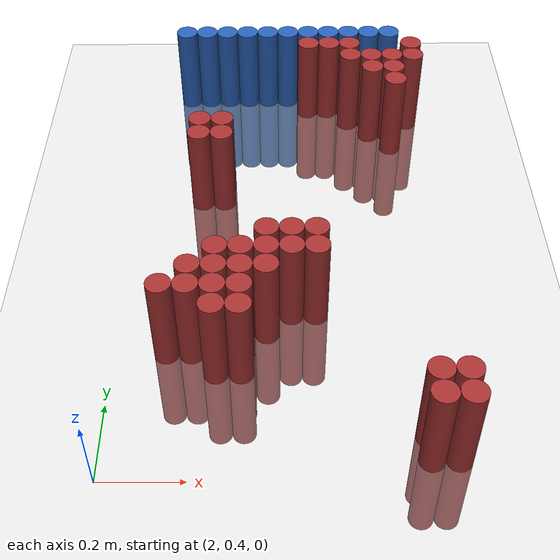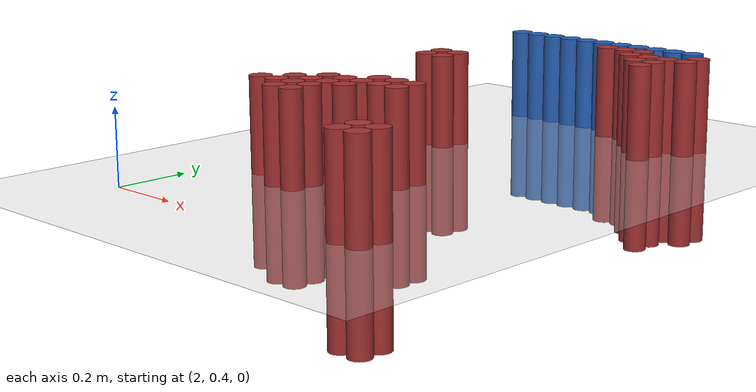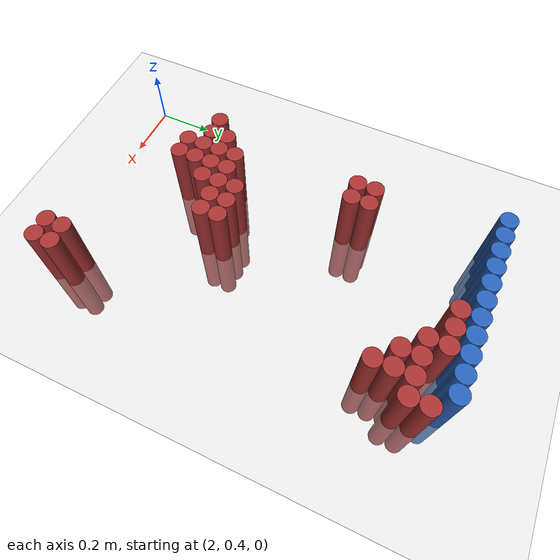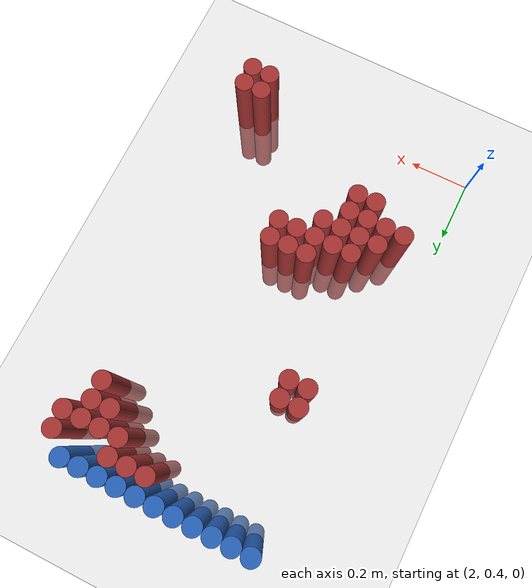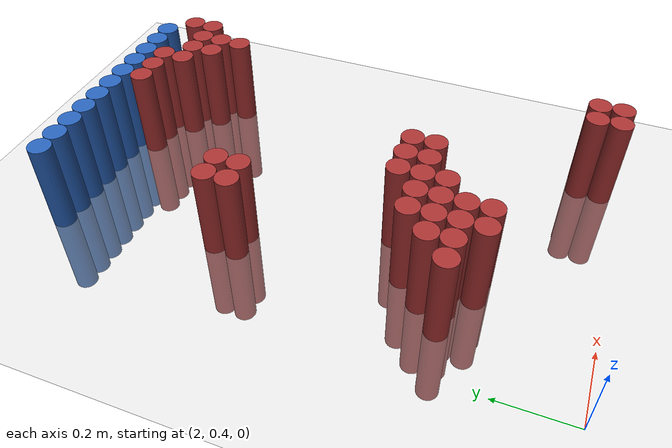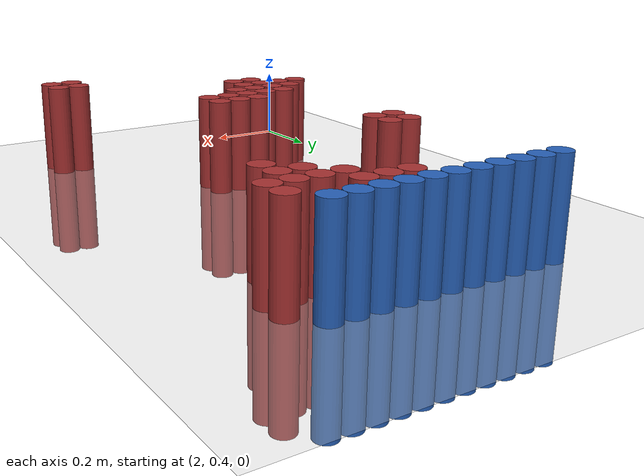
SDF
<sdf version="1.6">
 <world name="default">
  <model name="ground_plane">
   <static>1</static>
   <link name="link">
    <collision name="collision">
     <geometry><plane><normal>0 0 1</normal><size>100 100</size></plane></geometry>
     <surface><friction><ode><mu>100</mu><mu2>50</mu2></ode></friction></surface>
    </collision>
    <visual name="visual">
     <cast_shadows>0</cast_shadows>
     <geometry><plane><normal>0 0 1</normal><size>100 100</size></plane></geometry>
     <material>
      <script><uri>file://media/materials/scripts/gazebo.material</uri><name>Gazebo/Grey</name></script>
     </material>
    </visual>
   </link>
  </model>
  <model name="unit_cylinder_96">
   <static>1</static>
   <pose>2.130000 1.770000 0.000000 0.000000 0.000000 0.000000</pose>
   <link name="link">
    <inertial>
     <mass>1</mass>
     <inertia><ixx>0.145833</ixx><ixy>0</ixy><ixz>0</ixz><iyy>0.145833</iyy><iyz>0</iyz><izz>0.125</izz></inertia>
    </inertial>
    <collision name="collision">
     <geometry><cylinder><radius>0.030000</radius><length>0.5</length></cylinder></geometry>
    </collision>
    <visual name="visual">
     <geometry><cylinder><radius>0.030000</radius><length>0.5</length></cylinder></geometry>
     <material>
      <ambient>0.152000 0.379000 0.720000 1</ambient>
      <diffuse>0.152000 0.379000 0.720000 1</diffuse>
     </material>
     <material>
      <script><name>Gazebo/Grey</name><uri>file://media/materials/scripts/gazebo.material</uri></script>
     </material>
    </visual>
   </link>
  </model>
  <model name="unit_cylinder_97">
   <static>1</static>
   <pose>2.190000 1.770000 0.000000 0.000000 0.000000 0.000000</pose>
   <link name="link">
    <inertial>
     <mass>1</mass>
     <inertia><ixx>0.145833</ixx><ixy>0</ixy><ixz>0</ixz><iyy>0.145833</iyy><iyz>0</iyz><izz>0.125</izz></inertia>
    </inertial>
    <collision name="collision">
     <geometry><cylinder><radius>0.030000</radius><length>0.5</length></cylinder></geometry>
    </collision>
    <visual name="visual">
     <geometry><cylinder><radius>0.030000</radius><length>0.5</length></cylinder></geometry>
     <material>
      <ambient>0.152000 0.379000 0.720000 1</ambient>
      <diffuse>0.152000 0.379000 0.720000 1</diffuse>
     </material>
     <material>
      <script><name>Gazebo/Grey</name><uri>file://media/materials/scripts/gazebo.material</uri></script>
     </material>
    </visual>
   </link>
  </model>
  <model name="unit_cylinder_98">
   <static>1</static>
   <pose>2.250000 1.770000 0.000000 0.000000 0.000000 0.000000</pose>
   <link name="link">
    <inertial>
     <mass>1</mass>
     <inertia><ixx>0.145833</ixx><ixy>0</ixy><ixz>0</ixz><iyy>0.145833</iyy><iyz>0</iyz><izz>0.125</izz></inertia>
    </inertial>
    <collision name="collision">
     <geometry><cylinder><radius>0.030000</radius><length>0.5</length></cylinder></geometry>
    </collision>
    <visual name="visual">
     <geometry><cylinder><radius>0.030000</radius><length>0.5</length></cylinder></geometry>
     <material>
      <ambient>0.152000 0.379000 0.720000 1</ambient>
      <diffuse>0.152000 0.379000 0.720000 1</diffuse>
     </material>
     <material>
      <script><name>Gazebo/Grey</name><uri>file://media/materials/scripts/gazebo.material</uri></script>
     </material>
    </visual>
   </link>
  </model>
  <model name="unit_cylinder_99">
   <static>1</static>
   <pose>2.310000 1.770000 0.000000 0.000000 0.000000 0.000000</pose>
   <link name="link">
    <inertial>
     <mass>1</mass>
     <inertia><ixx>0.145833</ixx><ixy>0</ixy><ixz>0</ixz><iyy>0.145833</iyy><iyz>0</iyz><izz>0.125</izz></inertia>
    </inertial>
    <collision name="collision">
     <geometry><cylinder><radius>0.030000</radius><length>0.5</length></cylinder></geometry>
    </collision>
    <visual name="visual">
     <geometry><cylinder><radius>0.030000</radius><length>0.5</length></cylinder></geometry>
     <material>
      <ambient>0.152000 0.379000 0.720000 1</ambient>
      <diffuse>0.152000 0.379000 0.720000 1</diffuse>
     </material>
     <material>
      <script><name>Gazebo/Grey</name><uri>file://media/materials/scripts/gazebo.material</uri></script>
     </material>
    </visual>
   </link>
  </model>
  <model name="unit_cylinder_100">
   <static>1</static>
   <pose>2.370000 1.770000 0.000000 0.000000 0.000000 0.000000</pose>
   <link name="link">
    <inertial>
     <mass>1</mass>
     <inertia><ixx>0.145833</ixx><ixy>0</ixy><ixz>0</ixz><iyy>0.145833</iyy><iyz>0</iyz><izz>0.125</izz></inertia>
    </inertial>
    <collision name="collision">
     <geometry><cylinder><radius>0.030000</radius><length>0.5</length></cylinder></geometry>
    </collision>
    <visual name="visual">
     <geometry><cylinder><radius>0.030000</radius><length>0.5</length></cylinder></geometry>
     <material>
      <ambient>0.152000 0.379000 0.720000 1</ambient>
      <diffuse>0.152000 0.379000 0.720000 1</diffuse>
     </material>
     <material>
      <script><name>Gazebo/Grey</name><uri>file://media/materials/scripts/gazebo.material</uri></script>
     </material>
    </visual>
   </link>
  </model>
  <model name="unit_cylinder_101">
   <static>1</static>
   <pose>2.430000 1.770000 0.000000 0.000000 0.000000 0.000000</pose>
   <link name="link">
    <inertial>
     <mass>1</mass>
     <inertia><ixx>0.145833</ixx><ixy>0</ixy><ixz>0</ixz><iyy>0.145833</iyy><iyz>0</iyz><izz>0.125</izz></inertia>
    </inertial>
    <collision name="collision">
     <geometry><cylinder><radius>0.030000</radius><length>0.5</length></cylinder></geometry>
    </collision>
    <visual name="visual">
     <geometry><cylinder><radius>0.030000</radius><length>0.5</length></cylinder></geometry>
     <material>
      <ambient>0.152000 0.379000 0.720000 1</ambient>
      <diffuse>0.152000 0.379000 0.720000 1</diffuse>
     </material>
     <material>
      <script><name>Gazebo/Grey</name><uri>file://media/materials/scripts/gazebo.material</uri></script>
     </material>
    </visual>
   </link>
  </model>
  <model name="unit_cylinder_102">
   <static>1</static>
   <pose>2.490000 1.770000 0.000000 0.000000 0.000000 0.000000</pose>
   <link name="link">
    <inertial>
     <mass>1</mass>
     <inertia><ixx>0.145833</ixx><ixy>0</ixy><ixz>0</ixz><iyy>0.145833</iyy><iyz>0</iyz><izz>0.125</izz></inertia>
    </inertial>
    <collision name="collision">
     <geometry><cylinder><radius>0.030000</radius><length>0.5</length></cylinder></geometry>
    </collision>
    <visual name="visual">
     <geometry><cylinder><radius>0.030000</radius><length>0.5</length></cylinder></geometry>
     <material>
      <ambient>0.152000 0.379000 0.720000 1</ambient>
      <diffuse>0.152000 0.379000 0.720000 1</diffuse>
     </material>
     <material>
      <script><name>Gazebo/Grey</name><uri>file://media/materials/scripts/gazebo.material</uri></script>
     </material>
    </visual>
   </link>
  </model>
  <model name="unit_cylinder_103">
   <static>1</static>
   <pose>2.550000 1.770000 0.000000 0.000000 0.000000 0.000000</pose>
   <link name="link">
    <inertial>
     <mass>1</mass>
     <inertia><ixx>0.145833</ixx><ixy>0</ixy><ixz>0</ixz><iyy>0.145833</iyy><iyz>0</iyz><izz>0.125</izz></inertia>
    </inertial>
    <collision name="collision">
     <geometry><cylinder><radius>0.030000</radius><length>0.5</length></cylinder></geometry>
    </collision>
    <visual name="visual">
     <geometry><cylinder><radius>0.030000</radius><length>0.5</length></cylinder></geometry>
     <material>
      <ambient>0.152000 0.379000 0.720000 1</ambient>
      <diffuse>0.152000 0.379000 0.720000 1</diffuse>
     </material>
     <material>
      <script><name>Gazebo/Grey</name><uri>file://media/materials/scripts/gazebo.material</uri></script>
     </material>
    </visual>
   </link>
  </model>
  <model name="unit_cylinder_104">
   <static>1</static>
   <pose>2.610000 1.770000 0.000000 0.000000 0.000000 0.000000</pose>
   <link name="link">
    <inertial>
     <mass>1</mass>
     <inertia><ixx>0.145833</ixx><ixy>0</ixy><ixz>0</ixz><iyy>0.145833</iyy><iyz>0</iyz><izz>0.125</izz></inertia>
    </inertial>
    <collision name="collision">
     <geometry><cylinder><radius>0.030000</radius><length>0.5</length></cylinder></geometry>
    </collision>
    <visual name="visual">
     <geometry><cylinder><radius>0.030000</radius><length>0.5</length></cylinder></geometry>
     <material>
      <ambient>0.152000 0.379000 0.720000 1</ambient>
      <diffuse>0.152000 0.379000 0.720000 1</diffuse>
     </material>
     <material>
      <script><name>Gazebo/Grey</name><uri>file://media/materials/scripts/gazebo.material</uri></script>
     </material>
    </visual>
   </link>
  </model>
  <model name="unit_cylinder_105">
   <static>1</static>
   <pose>2.670000 1.770000 0.000000 0.000000 0.000000 0.000000</pose>
   <link name="link">
    <inertial>
     <mass>1</mass>
     <inertia><ixx>0.145833</ixx><ixy>0</ixy><ixz>0</ixz><iyy>0.145833</iyy><iyz>0</iyz><izz>0.125</izz></inertia>
    </inertial>
    <collision name="collision">
     <geometry><cylinder><radius>0.030000</radius><length>0.5</length></cylinder></geometry>
    </collision>
    <visual name="visual">
     <geometry><cylinder><radius>0.030000</radius><length>0.5</length></cylinder></geometry>
     <material>
      <ambient>0.152000 0.379000 0.720000 1</ambient>
      <diffuse>0.152000 0.379000 0.720000 1</diffuse>
     </material>
     <material>
      <script><name>Gazebo/Grey</name><uri>file://media/materials/scripts/gazebo.material</uri></script>
     </material>
    </visual>
   </link>
  </model>
  <model name="unit_cylinder_106">
   <static>1</static>
   <pose>2.730000 1.770000 0.000000 0.000000 0.000000 0.000000</pose>
   <link name="link">
    <inertial>
     <mass>1</mass>
     <inertia><ixx>0.145833</ixx><ixy>0</ixy><ixz>0</ixz><iyy>0.145833</iyy><iyz>0</iyz><izz>0.125</izz></inertia>
    </inertial>
    <collision name="collision">
     <geometry><cylinder><radius>0.030000</radius><length>0.5</length></cylinder></geometry>
    </collision>
    <visual name="visual">
     <geometry><cylinder><radius>0.030000</radius><length>0.5</length></cylinder></geometry>
     <material>
      <ambient>0.152000 0.379000 0.720000 1</ambient>
      <diffuse>0.152000 0.379000 0.720000 1</diffuse>
     </material>
     <material>
      <script><name>Gazebo/Grey</name><uri>file://media/materials/scripts/gazebo.material</uri></script>
     </material>
    </visual>
   </link>
  </model>
  <model name="unit_cylinder_125">
   <static>1</static>
   <pose>2.490000 1.710000 0.000000 0.000000 0.000000 0.000000</pose>
   <link name="link">
    <inertial>
     <mass>1</mass>
     <inertia><ixx>0.145833</ixx><ixy>0</ixy><ixz>0</ixz><iyy>0.145833</iyy><iyz>0</iyz><izz>0.125</izz></inertia>
    </inertial>
    <collision name="collision">
     <geometry><cylinder><radius>0.030000</radius><length>0.5</length></cylinder></geometry>
    </collision>
    <visual name="visual">
     <geometry><cylinder><radius>0.030000</radius><length>0.5</length></cylinder></geometry>
     <material>
      <ambient>0.648000 0.192000 0.192000 1</ambient>
      <diffuse>0.648000 0.192000 0.192000 1</diffuse>
     </material>
     <material>
      <script><name>Gazebo/Grey</name><uri>file://media/materials/scripts/gazebo.material</uri></script>
     </material>
    </visual>
   </link>
  </model>
  <model name="unit_cylinder_126">
   <static>1</static>
   <pose>2.550000 1.710000 0.000000 0.000000 0.000000 0.000000</pose>
   <link name="link">
    <inertial>
     <mass>1</mass>
     <inertia><ixx>0.145833</ixx><ixy>0</ixy><ixz>0</ixz><iyy>0.145833</iyy><iyz>0</iyz><izz>0.125</izz></inertia>
    </inertial>
    <collision name="collision">
     <geometry><cylinder><radius>0.030000</radius><length>0.5</length></cylinder></geometry>
    </collision>
    <visual name="visual">
     <geometry><cylinder><radius>0.030000</radius><length>0.5</length></cylinder></geometry>
     <material>
      <ambient>0.648000 0.192000 0.192000 1</ambient>
      <diffuse>0.648000 0.192000 0.192000 1</diffuse>
     </material>
     <material>
      <script><name>Gazebo/Grey</name><uri>file://media/materials/scripts/gazebo.material</uri></script>
     </material>
    </visual>
   </link>
  </model>
  <model name="unit_cylinder_127">
   <static>1</static>
   <pose>2.610000 1.710000 0.000000 0.000000 0.000000 0.000000</pose>
   <link name="link">
    <inertial>
     <mass>1</mass>
     <inertia><ixx>0.145833</ixx><ixy>0</ixy><ixz>0</ixz><iyy>0.145833</iyy><iyz>0</iyz><izz>0.125</izz></inertia>
    </inertial>
    <collision name="collision">
     <geometry><cylinder><radius>0.030000</radius><length>0.5</length></cylinder></geometry>
    </collision>
    <visual name="visual">
     <geometry><cylinder><radius>0.030000</radius><length>0.5</length></cylinder></geometry>
     <material>
      <ambient>0.648000 0.192000 0.192000 1</ambient>
      <diffuse>0.648000 0.192000 0.192000 1</diffuse>
     </material>
     <material>
      <script><name>Gazebo/Grey</name><uri>file://media/materials/scripts/gazebo.material</uri></script>
     </material>
    </visual>
   </link>
  </model>
  <model name="unit_cylinder_128">
   <static>1</static>
   <pose>2.790000 1.710000 0.000000 0.000000 0.000000 0.000000</pose>
   <link name="link">
    <inertial>
     <mass>1</mass>
     <inertia><ixx>0.145833</ixx><ixy>0</ixy><ixz>0</ixz><iyy>0.145833</iyy><iyz>0</iyz><izz>0.125</izz></inertia>
    </inertial>
    <collision name="collision">
     <geometry><cylinder><radius>0.030000</radius><length>0.5</length></cylinder></geometry>
    </collision>
    <visual name="visual">
     <geometry><cylinder><radius>0.030000</radius><length>0.5</length></cylinder></geometry>
     <material>
      <ambient>0.648000 0.192000 0.192000 1</ambient>
      <diffuse>0.648000 0.192000 0.192000 1</diffuse>
     </material>
     <material>
      <script><name>Gazebo/Grey</name><uri>file://media/materials/scripts/gazebo.material</uri></script>
     </material>
    </visual>
   </link>
  </model>
  <model name="unit_cylinder_137">
   <static>1</static>
   <pose>2.610000 1.650000 0.000000 0.000000 0.000000 0.000000</pose>
   <link name="link">
    <inertial>
     <mass>1</mass>
     <inertia><ixx>0.145833</ixx><ixy>0</ixy><ixz>0</ixz><iyy>0.145833</iyy><iyz>0</iyz><izz>0.125</izz></inertia>
    </inertial>
    <collision name="collision">
     <geometry><cylinder><radius>0.030000</radius><length>0.5</length></cylinder></geometry>
    </collision>
    <visual name="visual">
     <geometry><cylinder><radius>0.030000</radius><length>0.5</length></cylinder></geometry>
     <material>
      <ambient>0.648000 0.192000 0.192000 1</ambient>
      <diffuse>0.648000 0.192000 0.192000 1</diffuse>
     </material>
     <material>
      <script><name>Gazebo/Grey</name><uri>file://media/materials/scripts/gazebo.material</uri></script>
     </material>
    </visual>
   </link>
  </model>
  <model name="unit_cylinder_138">
   <static>1</static>
   <pose>2.670000 1.650000 0.000000 0.000000 0.000000 0.000000</pose>
   <link name="link">
    <inertial>
     <mass>1</mass>
     <inertia><ixx>0.145833</ixx><ixy>0</ixy><ixz>0</ixz><iyy>0.145833</iyy><iyz>0</iyz><izz>0.125</izz></inertia>
    </inertial>
    <collision name="collision">
     <geometry><cylinder><radius>0.030000</radius><length>0.5</length></cylinder></geometry>
    </collision>
    <visual name="visual">
     <geometry><cylinder><radius>0.030000</radius><length>0.5</length></cylinder></geometry>
     <material>
      <ambient>0.648000 0.192000 0.192000 1</ambient>
      <diffuse>0.648000 0.192000 0.192000 1</diffuse>
     </material>
     <material>
      <script><name>Gazebo/Grey</name><uri>file://media/materials/scripts/gazebo.material</uri></script>
     </material>
    </visual>
   </link>
  </model>
  <model name="unit_cylinder_139">
   <static>1</static>
   <pose>2.730000 1.650000 0.000000 0.000000 0.000000 0.000000</pose>
   <link name="link">
    <inertial>
     <mass>1</mass>
     <inertia><ixx>0.145833</ixx><ixy>0</ixy><ixz>0</ixz><iyy>0.145833</iyy><iyz>0</iyz><izz>0.125</izz></inertia>
    </inertial>
    <collision name="collision">
     <geometry><cylinder><radius>0.030000</radius><length>0.5</length></cylinder></geometry>
    </collision>
    <visual name="visual">
     <geometry><cylinder><radius>0.030000</radius><length>0.5</length></cylinder></geometry>
     <material>
      <ambient>0.648000 0.192000 0.192000 1</ambient>
      <diffuse>0.648000 0.192000 0.192000 1</diffuse>
     </material>
     <material>
      <script><name>Gazebo/Grey</name><uri>file://media/materials/scripts/gazebo.material</uri></script>
     </material>
    </visual>
   </link>
  </model>
  <model name="unit_cylinder_140">
   <static>1</static>
   <pose>2.790000 1.650000 0.000000 0.000000 0.000000 0.000000</pose>
   <link name="link">
    <inertial>
     <mass>1</mass>
     <inertia><ixx>0.145833</ixx><ixy>0</ixy><ixz>0</ixz><iyy>0.145833</iyy><iyz>0</iyz><izz>0.125</izz></inertia>
    </inertial>
    <collision name="collision">
     <geometry><cylinder><radius>0.030000</radius><length>0.5</length></cylinder></geometry>
    </collision>
    <visual name="visual">
     <geometry><cylinder><radius>0.030000</radius><length>0.5</length></cylinder></geometry>
     <material>
      <ambient>0.648000 0.192000 0.192000 1</ambient>
      <diffuse>0.648000 0.192000 0.192000 1</diffuse>
     </material>
     <material>
      <script><name>Gazebo/Grey</name><uri>file://media/materials/scripts/gazebo.material</uri></script>
     </material>
    </visual>
   </link>
  </model>
  <model name="unit_cylinder_144">
   <static>1</static>
   <pose>2.670000 1.590000 0.000000 0.000000 0.000000 0.000000</pose>
   <link name="link">
    <inertial>
     <mass>1</mass>
     <inertia><ixx>0.145833</ixx><ixy>0</ixy><ixz>0</ixz><iyy>0.145833</iyy><iyz>0</iyz><izz>0.125</izz></inertia>
    </inertial>
    <collision name="collision">
     <geometry><cylinder><radius>0.030000</radius><length>0.5</length></cylinder></geometry>
    </collision>
    <visual name="visual">
     <geometry><cylinder><radius>0.030000</radius><length>0.5</length></cylinder></geometry>
     <material>
      <ambient>0.648000 0.192000 0.192000 1</ambient>
      <diffuse>0.648000 0.192000 0.192000 1</diffuse>
     </material>
     <material>
      <script><name>Gazebo/Grey</name><uri>file://media/materials/scripts/gazebo.material</uri></script>
     </material>
    </visual>
   </link>
  </model>
  <model name="unit_cylinder_145">
   <static>1</static>
   <pose>2.730000 1.590000 0.000000 0.000000 0.000000 0.000000</pose>
   <link name="link">
    <inertial>
     <mass>1</mass>
     <inertia><ixx>0.145833</ixx><ixy>0</ixy><ixz>0</ixz><iyy>0.145833</iyy><iyz>0</iyz><izz>0.125</izz></inertia>
    </inertial>
    <collision name="collision">
     <geometry><cylinder><radius>0.030000</radius><length>0.5</length></cylinder></geometry>
    </collision>
    <visual name="visual">
     <geometry><cylinder><radius>0.030000</radius><length>0.5</length></cylinder></geometry>
     <material>
      <ambient>0.648000 0.192000 0.192000 1</ambient>
      <diffuse>0.648000 0.192000 0.192000 1</diffuse>
     </material>
     <material>
      <script><name>Gazebo/Grey</name><uri>file://media/materials/scripts/gazebo.material</uri></script>
     </material>
    </visual>
   </link>
  </model>
  <model name="unit_cylinder_148">
   <static>1</static>
   <pose>2.730000 1.530000 0.000000 0.000000 0.000000 0.000000</pose>
   <link name="link">
    <inertial>
     <mass>1</mass>
     <inertia><ixx>0.145833</ixx><ixy>0</ixy><ixz>0</ixz><iyy>0.145833</iyy><iyz>0</iyz><izz>0.125</izz></inertia>
    </inertial>
    <collision name="collision">
     <geometry><cylinder><radius>0.030000</radius><length>0.5</length></cylinder></geometry>
    </collision>
    <visual name="visual">
     <geometry><cylinder><radius>0.030000</radius><length>0.5</length></cylinder></geometry>
     <material>
      <ambient>0.648000 0.192000 0.192000 1</ambient>
      <diffuse>0.648000 0.192000 0.192000 1</diffuse>
     </material>
     <material>
      <script><name>Gazebo/Grey</name><uri>file://media/materials/scripts/gazebo.material</uri></script>
     </material>
    </visual>
   </link>
  </model>
  <model name="unit_cylinder_151">
   <static>1</static>
   <pose>2.190000 1.350000 0.000000 0.000000 0.000000 0.000000</pose>
   <link name="link">
    <inertial>
     <mass>1</mass>
     <inertia><ixx>0.145833</ixx><ixy>0</ixy><ixz>0</ixz><iyy>0.145833</iyy><iyz>0</iyz><izz>0.125</izz></inertia>
    </inertial>
    <collision name="collision">
     <geometry><cylinder><radius>0.030000</radius><length>0.5</length></cylinder></geometry>
    </collision>
    <visual name="visual">
     <geometry><cylinder><radius>0.030000</radius><length>0.5</length></cylinder></geometry>
     <material>
      <ambient>0.648000 0.192000 0.192000 1</ambient>
      <diffuse>0.648000 0.192000 0.192000 1</diffuse>
     </material>
     <material>
      <script><name>Gazebo/Grey</name><uri>file://media/materials/scripts/gazebo.material</uri></script>
     </material>
    </visual>
   </link>
  </model>
  <model name="unit_cylinder_152">
   <static>1</static>
   <pose>2.250000 1.350000 0.000000 0.000000 0.000000 0.000000</pose>
   <link name="link">
    <inertial>
     <mass>1</mass>
     <inertia><ixx>0.145833</ixx><ixy>0</ixy><ixz>0</ixz><iyy>0.145833</iyy><iyz>0</iyz><izz>0.125</izz></inertia>
    </inertial>
    <collision name="collision">
     <geometry><cylinder><radius>0.030000</radius><length>0.5</length></cylinder></geometry>
    </collision>
    <visual name="visual">
     <geometry><cylinder><radius>0.030000</radius><length>0.5</length></cylinder></geometry>
     <material>
      <ambient>0.648000 0.192000 0.192000 1</ambient>
      <diffuse>0.648000 0.192000 0.192000 1</diffuse>
     </material>
     <material>
      <script><name>Gazebo/Grey</name><uri>file://media/materials/scripts/gazebo.material</uri></script>
     </material>
    </visual>
   </link>
  </model>
  <model name="unit_cylinder_155">
   <static>1</static>
   <pose>2.190000 1.290000 0.000000 0.000000 0.000000 0.000000</pose>
   <link name="link">
    <inertial>
     <mass>1</mass>
     <inertia><ixx>0.145833</ixx><ixy>0</ixy><ixz>0</ixz><iyy>0.145833</iyy><iyz>0</iyz><izz>0.125</izz></inertia>
    </inertial>
    <collision name="collision">
     <geometry><cylinder><radius>0.030000</radius><length>0.5</length></cylinder></geometry>
    </collision>
    <visual name="visual">
     <geometry><cylinder><radius>0.030000</radius><length>0.5</length></cylinder></geometry>
     <material>
      <ambient>0.648000 0.192000 0.192000 1</ambient>
      <diffuse>0.648000 0.192000 0.192000 1</diffuse>
     </material>
     <material>
      <script><name>Gazebo/Grey</name><uri>file://media/materials/scripts/gazebo.material</uri></script>
     </material>
    </visual>
   </link>
  </model>
  <model name="unit_cylinder_156">
   <static>1</static>
   <pose>2.250000 1.290000 0.000000 0.000000 0.000000 0.000000</pose>
   <link name="link">
    <inertial>
     <mass>1</mass>
     <inertia><ixx>0.145833</ixx><ixy>0</ixy><ixz>0</ixz><iyy>0.145833</iyy><iyz>0</iyz><izz>0.125</izz></inertia>
    </inertial>
    <collision name="collision">
     <geometry><cylinder><radius>0.030000</radius><length>0.5</length></cylinder></geometry>
    </collision>
    <visual name="visual">
     <geometry><cylinder><radius>0.030000</radius><length>0.5</length></cylinder></geometry>
     <material>
      <ambient>0.648000 0.192000 0.192000 1</ambient>
      <diffuse>0.648000 0.192000 0.192000 1</diffuse>
     </material>
     <material>
      <script><name>Gazebo/Grey</name><uri>file://media/materials/scripts/gazebo.material</uri></script>
     </material>
    </visual>
   </link>
  </model>
  <model name="unit_cylinder_160">
   <static>1</static>
   <pose>2.370000 0.930000 0.000000 0.000000 0.000000 0.000000</pose>
   <link name="link">
    <inertial>
     <mass>1</mass>
     <inertia><ixx>0.145833</ixx><ixy>0</ixy><ixz>0</ixz><iyy>0.145833</iyy><iyz>0</iyz><izz>0.125</izz></inertia>
    </inertial>
    <collision name="collision">
     <geometry><cylinder><radius>0.030000</radius><length>0.5</length></cylinder></geometry>
    </collision>
    <visual name="visual">
     <geometry><cylinder><radius>0.030000</radius><length>0.5</length></cylinder></geometry>
     <material>
      <ambient>0.648000 0.192000 0.192000 1</ambient>
      <diffuse>0.648000 0.192000 0.192000 1</diffuse>
     </material>
     <material>
      <script><name>Gazebo/Grey</name><uri>file://media/materials/scripts/gazebo.material</uri></script>
     </material>
    </visual>
   </link>
  </model>
  <model name="unit_cylinder_161">
   <static>1</static>
   <pose>2.430000 0.930000 0.000000 0.000000 0.000000 0.000000</pose>
   <link name="link">
    <inertial>
     <mass>1</mass>
     <inertia><ixx>0.145833</ixx><ixy>0</ixy><ixz>0</ixz><iyy>0.145833</iyy><iyz>0</iyz><izz>0.125</izz></inertia>
    </inertial>
    <collision name="collision">
     <geometry><cylinder><radius>0.030000</radius><length>0.5</length></cylinder></geometry>
    </collision>
    <visual name="visual">
     <geometry><cylinder><radius>0.030000</radius><length>0.5</length></cylinder></geometry>
     <material>
      <ambient>0.648000 0.192000 0.192000 1</ambient>
      <diffuse>0.648000 0.192000 0.192000 1</diffuse>
     </material>
     <material>
      <script><name>Gazebo/Grey</name><uri>file://media/materials/scripts/gazebo.material</uri></script>
     </material>
    </visual>
   </link>
  </model>
  <model name="unit_cylinder_162">
   <static>1</static>
   <pose>2.490000 0.930000 0.000000 0.000000 0.000000 0.000000</pose>
   <link name="link">
    <inertial>
     <mass>1</mass>
     <inertia><ixx>0.145833</ixx><ixy>0</ixy><ixz>0</ixz><iyy>0.145833</iyy><iyz>0</iyz><izz>0.125</izz></inertia>
    </inertial>
    <collision name="collision">
     <geometry><cylinder><radius>0.030000</radius><length>0.5</length></cylinder></geometry>
    </collision>
    <visual name="visual">
     <geometry><cylinder><radius>0.030000</radius><length>0.5</length></cylinder></geometry>
     <material>
      <ambient>0.648000 0.192000 0.192000 1</ambient>
      <diffuse>0.648000 0.192000 0.192000 1</diffuse>
     </material>
     <material>
      <script><name>Gazebo/Grey</name><uri>file://media/materials/scripts/gazebo.material</uri></script>
     </material>
    </visual>
   </link>
  </model>
  <model name="unit_cylinder_163">
   <static>1</static>
   <pose>2.250000 0.870000 0.000000 0.000000 0.000000 0.000000</pose>
   <link name="link">
    <inertial>
     <mass>1</mass>
     <inertia><ixx>0.145833</ixx><ixy>0</ixy><ixz>0</ixz><iyy>0.145833</iyy><iyz>0</iyz><izz>0.125</izz></inertia>
    </inertial>
    <collision name="collision">
     <geometry><cylinder><radius>0.030000</radius><length>0.5</length></cylinder></geometry>
    </collision>
    <visual name="visual">
     <geometry><cylinder><radius>0.030000</radius><length>0.5</length></cylinder></geometry>
     <material>
      <ambient>0.648000 0.192000 0.192000 1</ambient>
      <diffuse>0.648000 0.192000 0.192000 1</diffuse>
     </material>
     <material>
      <script><name>Gazebo/Grey</name><uri>file://media/materials/scripts/gazebo.material</uri></script>
     </material>
    </visual>
   </link>
  </model>
  <model name="unit_cylinder_164">
   <static>1</static>
   <pose>2.310000 0.870000 0.000000 0.000000 0.000000 0.000000</pose>
   <link name="link">
    <inertial>
     <mass>1</mass>
     <inertia><ixx>0.145833</ixx><ixy>0</ixy><ixz>0</ixz><iyy>0.145833</iyy><iyz>0</iyz><izz>0.125</izz></inertia>
    </inertial>
    <collision name="collision">
     <geometry><cylinder><radius>0.030000</radius><length>0.5</length></cylinder></geometry>
    </collision>
    <visual name="visual">
     <geometry><cylinder><radius>0.030000</radius><length>0.5</length></cylinder></geometry>
     <material>
      <ambient>0.648000 0.192000 0.192000 1</ambient>
      <diffuse>0.648000 0.192000 0.192000 1</diffuse>
     </material>
     <material>
      <script><name>Gazebo/Grey</name><uri>file://media/materials/scripts/gazebo.material</uri></script>
     </material>
    </visual>
   </link>
  </model>
  <model name="unit_cylinder_165">
   <static>1</static>
   <pose>2.370000 0.870000 0.000000 0.000000 0.000000 0.000000</pose>
   <link name="link">
    <inertial>
     <mass>1</mass>
     <inertia><ixx>0.145833</ixx><ixy>0</ixy><ixz>0</ixz><iyy>0.145833</iyy><iyz>0</iyz><izz>0.125</izz></inertia>
    </inertial>
    <collision name="collision">
     <geometry><cylinder><radius>0.030000</radius><length>0.5</length></cylinder></geometry>
    </collision>
    <visual name="visual">
     <geometry><cylinder><radius>0.030000</radius><length>0.5</length></cylinder></geometry>
     <material>
      <ambient>0.648000 0.192000 0.192000 1</ambient>
      <diffuse>0.648000 0.192000 0.192000 1</diffuse>
     </material>
     <material>
      <script><name>Gazebo/Grey</name><uri>file://media/materials/scripts/gazebo.material</uri></script>
     </material>
    </visual>
   </link>
  </model>
  <model name="unit_cylinder_166">
   <static>1</static>
   <pose>2.430000 0.870000 0.000000 0.000000 0.000000 0.000000</pose>
   <link name="link">
    <inertial>
     <mass>1</mass>
     <inertia><ixx>0.145833</ixx><ixy>0</ixy><ixz>0</ixz><iyy>0.145833</iyy><iyz>0</iyz><izz>0.125</izz></inertia>
    </inertial>
    <collision name="collision">
     <geometry><cylinder><radius>0.030000</radius><length>0.5</length></cylinder></geometry>
    </collision>
    <visual name="visual">
     <geometry><cylinder><radius>0.030000</radius><length>0.5</length></cylinder></geometry>
     <material>
      <ambient>0.648000 0.192000 0.192000 1</ambient>
      <diffuse>0.648000 0.192000 0.192000 1</diffuse>
     </material>
     <material>
      <script><name>Gazebo/Grey</name><uri>file://media/materials/scripts/gazebo.material</uri></script>
     </material>
    </visual>
   </link>
  </model>
  <model name="unit_cylinder_167">
   <static>1</static>
   <pose>2.490000 0.870000 0.000000 0.000000 0.000000 0.000000</pose>
   <link name="link">
    <inertial>
     <mass>1</mass>
     <inertia><ixx>0.145833</ixx><ixy>0</ixy><ixz>0</ixz><iyy>0.145833</iyy><iyz>0</iyz><izz>0.125</izz></inertia>
    </inertial>
    <collision name="collision">
     <geometry><cylinder><radius>0.030000</radius><length>0.5</length></cylinder></geometry>
    </collision>
    <visual name="visual">
     <geometry><cylinder><radius>0.030000</radius><length>0.5</length></cylinder></geometry>
     <material>
      <ambient>0.648000 0.192000 0.192000 1</ambient>
      <diffuse>0.648000 0.192000 0.192000 1</diffuse>
     </material>
     <material>
      <script><name>Gazebo/Grey</name><uri>file://media/materials/scripts/gazebo.material</uri></script>
     </material>
    </visual>
   </link>
  </model>
  <model name="unit_cylinder_168">
   <static>1</static>
   <pose>2.190000 0.810000 0.000000 0.000000 0.000000 0.000000</pose>
   <link name="link">
    <inertial>
     <mass>1</mass>
     <inertia><ixx>0.145833</ixx><ixy>0</ixy><ixz>0</ixz><iyy>0.145833</iyy><iyz>0</iyz><izz>0.125</izz></inertia>
    </inertial>
    <collision name="collision">
     <geometry><cylinder><radius>0.030000</radius><length>0.5</length></cylinder></geometry>
    </collision>
    <visual name="visual">
     <geometry><cylinder><radius>0.030000</radius><length>0.5</length></cylinder></geometry>
     <material>
      <ambient>0.648000 0.192000 0.192000 1</ambient>
      <diffuse>0.648000 0.192000 0.192000 1</diffuse>
     </material>
     <material>
      <script><name>Gazebo/Grey</name><uri>file://media/materials/scripts/gazebo.material</uri></script>
     </material>
    </visual>
   </link>
  </model>
  <model name="unit_cylinder_169">
   <static>1</static>
   <pose>2.250000 0.810000 0.000000 0.000000 0.000000 0.000000</pose>
   <link name="link">
    <inertial>
     <mass>1</mass>
     <inertia><ixx>0.145833</ixx><ixy>0</ixy><ixz>0</ixz><iyy>0.145833</iyy><iyz>0</iyz><izz>0.125</izz></inertia>
    </inertial>
    <collision name="collision">
     <geometry><cylinder><radius>0.030000</radius><length>0.5</length></cylinder></geometry>
    </collision>
    <visual name="visual">
     <geometry><cylinder><radius>0.030000</radius><length>0.5</length></cylinder></geometry>
     <material>
      <ambient>0.648000 0.192000 0.192000 1</ambient>
      <diffuse>0.648000 0.192000 0.192000 1</diffuse>
     </material>
     <material>
      <script><name>Gazebo/Grey</name><uri>file://media/materials/scripts/gazebo.material</uri></script>
     </material>
    </visual>
   </link>
  </model>
  <model name="unit_cylinder_170">
   <static>1</static>
   <pose>2.310000 0.810000 0.000000 0.000000 0.000000 0.000000</pose>
   <link name="link">
    <inertial>
     <mass>1</mass>
     <inertia><ixx>0.145833</ixx><ixy>0</ixy><ixz>0</ixz><iyy>0.145833</iyy><iyz>0</iyz><izz>0.125</izz></inertia>
    </inertial>
    <collision name="collision">
     <geometry><cylinder><radius>0.030000</radius><length>0.5</length></cylinder></geometry>
    </collision>
    <visual name="visual">
     <geometry><cylinder><radius>0.030000</radius><length>0.5</length></cylinder></geometry>
     <material>
      <ambient>0.648000 0.192000 0.192000 1</ambient>
      <diffuse>0.648000 0.192000 0.192000 1</diffuse>
     </material>
     <material>
      <script><name>Gazebo/Grey</name><uri>file://media/materials/scripts/gazebo.material</uri></script>
     </material>
    </visual>
   </link>
  </model>
  <model name="unit_cylinder_171">
   <static>1</static>
   <pose>2.370000 0.810000 0.000000 0.000000 0.000000 0.000000</pose>
   <link name="link">
    <inertial>
     <mass>1</mass>
     <inertia><ixx>0.145833</ixx><ixy>0</ixy><ixz>0</ixz><iyy>0.145833</iyy><iyz>0</iyz><izz>0.125</izz></inertia>
    </inertial>
    <collision name="collision">
     <geometry><cylinder><radius>0.030000</radius><length>0.5</length></cylinder></geometry>
    </collision>
    <visual name="visual">
     <geometry><cylinder><radius>0.030000</radius><length>0.5</length></cylinder></geometry>
     <material>
      <ambient>0.648000 0.192000 0.192000 1</ambient>
      <diffuse>0.648000 0.192000 0.192000 1</diffuse>
     </material>
     <material>
      <script><name>Gazebo/Grey</name><uri>file://media/materials/scripts/gazebo.material</uri></script>
     </material>
    </visual>
   </link>
  </model>
  <model name="unit_cylinder_172">
   <static>1</static>
   <pose>2.130000 0.750000 0.000000 0.000000 0.000000 0.000000</pose>
   <link name="link">
    <inertial>
     <mass>1</mass>
     <inertia><ixx>0.145833</ixx><ixy>0</ixy><ixz>0</ixz><iyy>0.145833</iyy><iyz>0</iyz><izz>0.125</izz></inertia>
    </inertial>
    <collision name="collision">
     <geometry><cylinder><radius>0.030000</radius><length>0.5</length></cylinder></geometry>
    </collision>
    <visual name="visual">
     <geometry><cylinder><radius>0.030000</radius><length>0.5</length></cylinder></geometry>
     <material>
      <ambient>0.648000 0.192000 0.192000 1</ambient>
      <diffuse>0.648000 0.192000 0.192000 1</diffuse>
     </material>
     <material>
      <script><name>Gazebo/Grey</name><uri>file://media/materials/scripts/gazebo.material</uri></script>
     </material>
    </visual>
   </link>
  </model>
  <model name="unit_cylinder_173">
   <static>1</static>
   <pose>2.190000 0.750000 0.000000 0.000000 0.000000 0.000000</pose>
   <link name="link">
    <inertial>
     <mass>1</mass>
     <inertia><ixx>0.145833</ixx><ixy>0</ixy><ixz>0</ixz><iyy>0.145833</iyy><iyz>0</iyz><izz>0.125</izz></inertia>
    </inertial>
    <collision name="collision">
     <geometry><cylinder><radius>0.030000</radius><length>0.5</length></cylinder></geometry>
    </collision>
    <visual name="visual">
     <geometry><cylinder><radius>0.030000</radius><length>0.5</length></cylinder></geometry>
     <material>
      <ambient>0.648000 0.192000 0.192000 1</ambient>
      <diffuse>0.648000 0.192000 0.192000 1</diffuse>
     </material>
     <material>
      <script><name>Gazebo/Grey</name><uri>file://media/materials/scripts/gazebo.material</uri></script>
     </material>
    </visual>
   </link>
  </model>
  <model name="unit_cylinder_174">
   <static>1</static>
   <pose>2.250000 0.750000 0.000000 0.000000 0.000000 0.000000</pose>
   <link name="link">
    <inertial>
     <mass>1</mass>
     <inertia><ixx>0.145833</ixx><ixy>0</ixy><ixz>0</ixz><iyy>0.145833</iyy><iyz>0</iyz><izz>0.125</izz></inertia>
    </inertial>
    <collision name="collision">
     <geometry><cylinder><radius>0.030000</radius><length>0.5</length></cylinder></geometry>
    </collision>
    <visual name="visual">
     <geometry><cylinder><radius>0.030000</radius><length>0.5</length></cylinder></geometry>
     <material>
      <ambient>0.648000 0.192000 0.192000 1</ambient>
      <diffuse>0.648000 0.192000 0.192000 1</diffuse>
     </material>
     <material>
      <script><name>Gazebo/Grey</name><uri>file://media/materials/scripts/gazebo.material</uri></script>
     </material>
    </visual>
   </link>
  </model>
  <model name="unit_cylinder_175">
   <static>1</static>
   <pose>2.310000 0.750000 0.000000 0.000000 0.000000 0.000000</pose>
   <link name="link">
    <inertial>
     <mass>1</mass>
     <inertia><ixx>0.145833</ixx><ixy>0</ixy><ixz>0</ixz><iyy>0.145833</iyy><iyz>0</iyz><izz>0.125</izz></inertia>
    </inertial>
    <collision name="collision">
     <geometry><cylinder><radius>0.030000</radius><length>0.5</length></cylinder></geometry>
    </collision>
    <visual name="visual">
     <geometry><cylinder><radius>0.030000</radius><length>0.5</length></cylinder></geometry>
     <material>
      <ambient>0.648000 0.192000 0.192000 1</ambient>
      <diffuse>0.648000 0.192000 0.192000 1</diffuse>
     </material>
     <material>
      <script><name>Gazebo/Grey</name><uri>file://media/materials/scripts/gazebo.material</uri></script>
     </material>
    </visual>
   </link>
  </model>
  <model name="unit_cylinder_176">
   <static>1</static>
   <pose>2.250000 0.690000 0.000000 0.000000 0.000000 0.000000</pose>
   <link name="link">
    <inertial>
     <mass>1</mass>
     <inertia><ixx>0.145833</ixx><ixy>0</ixy><ixz>0</ixz><iyy>0.145833</iyy><iyz>0</iyz><izz>0.125</izz></inertia>
    </inertial>
    <collision name="collision">
     <geometry><cylinder><radius>0.030000</radius><length>0.5</length></cylinder></geometry>
    </collision>
    <visual name="visual">
     <geometry><cylinder><radius>0.030000</radius><length>0.5</length></cylinder></geometry>
     <material>
      <ambient>0.648000 0.192000 0.192000 1</ambient>
      <diffuse>0.648000 0.192000 0.192000 1</diffuse>
     </material>
     <material>
      <script><name>Gazebo/Grey</name><uri>file://media/materials/scripts/gazebo.material</uri></script>
     </material>
    </visual>
   </link>
  </model>
  <model name="unit_cylinder_177">
   <static>1</static>
   <pose>2.310000 0.690000 0.000000 0.000000 0.000000 0.000000</pose>
   <link name="link">
    <inertial>
     <mass>1</mass>
     <inertia><ixx>0.145833</ixx><ixy>0</ixy><ixz>0</ixz><iyy>0.145833</iyy><iyz>0</iyz><izz>0.125</izz></inertia>
    </inertial>
    <collision name="collision">
     <geometry><cylinder><radius>0.030000</radius><length>0.5</length></cylinder></geometry>
    </collision>
    <visual name="visual">
     <geometry><cylinder><radius>0.030000</radius><length>0.5</length></cylinder></geometry>
     <material>
      <ambient>0.648000 0.192000 0.192000 1</ambient>
      <diffuse>0.648000 0.192000 0.192000 1</diffuse>
     </material>
     <material>
      <script><name>Gazebo/Grey</name><uri>file://media/materials/scripts/gazebo.material</uri></script>
     </material>
    </visual>
   </link>
  </model>
  <model name="unit_cylinder_182">
   <static>1</static>
   <pose>2.730000 0.510000 0.000000 0.000000 0.000000 0.000000</pose>
   <link name="link">
    <inertial>
     <mass>1</mass>
     <inertia><ixx>0.145833</ixx><ixy>0</ixy><ixz>0</ixz><iyy>0.145833</iyy><iyz>0</iyz><izz>0.125</izz></inertia>
    </inertial>
    <collision name="collision">
     <geometry><cylinder><radius>0.030000</radius><length>0.5</length></cylinder></geometry>
    </collision>
    <visual name="visual">
     <geometry><cylinder><radius>0.030000</radius><length>0.5</length></cylinder></geometry>
     <material>
      <ambient>0.648000 0.192000 0.192000 1</ambient>
      <diffuse>0.648000 0.192000 0.192000 1</diffuse>
     </material>
     <material>
      <script><name>Gazebo/Grey</name><uri>file://media/materials/scripts/gazebo.material</uri></script>
     </material>
    </visual>
   </link>
  </model>
  <model name="unit_cylinder_183">
   <static>1</static>
   <pose>2.790000 0.510000 0.000000 0.000000 0.000000 0.000000</pose>
   <link name="link">
    <inertial>
     <mass>1</mass>
     <inertia><ixx>0.145833</ixx><ixy>0</ixy><ixz>0</ixz><iyy>0.145833</iyy><iyz>0</iyz><izz>0.125</izz></inertia>
    </inertial>
    <collision name="collision">
     <geometry><cylinder><radius>0.030000</radius><length>0.5</length></cylinder></geometry>
    </collision>
    <visual name="visual">
     <geometry><cylinder><radius>0.030000</radius><length>0.5</length></cylinder></geometry>
     <material>
      <ambient>0.648000 0.192000 0.192000 1</ambient>
      <diffuse>0.648000 0.192000 0.192000 1</diffuse>
     </material>
     <material>
      <script><name>Gazebo/Grey</name><uri>file://media/materials/scripts/gazebo.material</uri></script>
     </material>
    </visual>
   </link>
  </model>
  <model name="unit_cylinder_187">
   <static>1</static>
   <pose>2.730000 0.450000 0.000000 0.000000 0.000000 0.000000</pose>
   <link name="link">
    <inertial>
     <mass>1</mass>
     <inertia><ixx>0.145833</ixx><ixy>0</ixy><ixz>0</ixz><iyy>0.145833</iyy><iyz>0</iyz><izz>0.125</izz></inertia>
    </inertial>
    <collision name="collision">
     <geometry><cylinder><radius>0.030000</radius><length>0.5</length></cylinder></geometry>
    </collision>
    <visual name="visual">
     <geometry><cylinder><radius>0.030000</radius><length>0.5</length></cylinder></geometry>
     <material>
      <ambient>0.648000 0.192000 0.192000 1</ambient>
      <diffuse>0.648000 0.192000 0.192000 1</diffuse>
     </material>
     <material>
      <script><name>Gazebo/Grey</name><uri>file://media/materials/scripts/gazebo.material</uri></script>
     </material>
    </visual>
   </link>
  </model>
  <model name="unit_cylinder_188">
   <static>1</static>
   <pose>2.790000 0.450000 0.000000 0.000000 0.000000 0.000000</pose>
   <link name="link">
    <inertial>
     <mass>1</mass>
     <inertia><ixx>0.145833</ixx><ixy>0</ixy><ixz>0</ixz><iyy>0.145833</iyy><iyz>0</iyz><izz>0.125</izz></inertia>
    </inertial>
    <collision name="collision">
     <geometry><cylinder><radius>0.030000</radius><length>0.5</length></cylinder></geometry>
    </collision>
    <visual name="visual">
     <geometry><cylinder><radius>0.030000</radius><length>0.5</length></cylinder></geometry>
     <material>
      <ambient>0.648000 0.192000 0.192000 1</ambient>
      <diffuse>0.648000 0.192000 0.192000 1</diffuse>
     </material>
     <material>
      <script><name>Gazebo/Grey</name><uri>file://media/materials/scripts/gazebo.material</uri></script>
     </material>
    </visual>
   </link>
  </model>
 </world>
</sdf>
